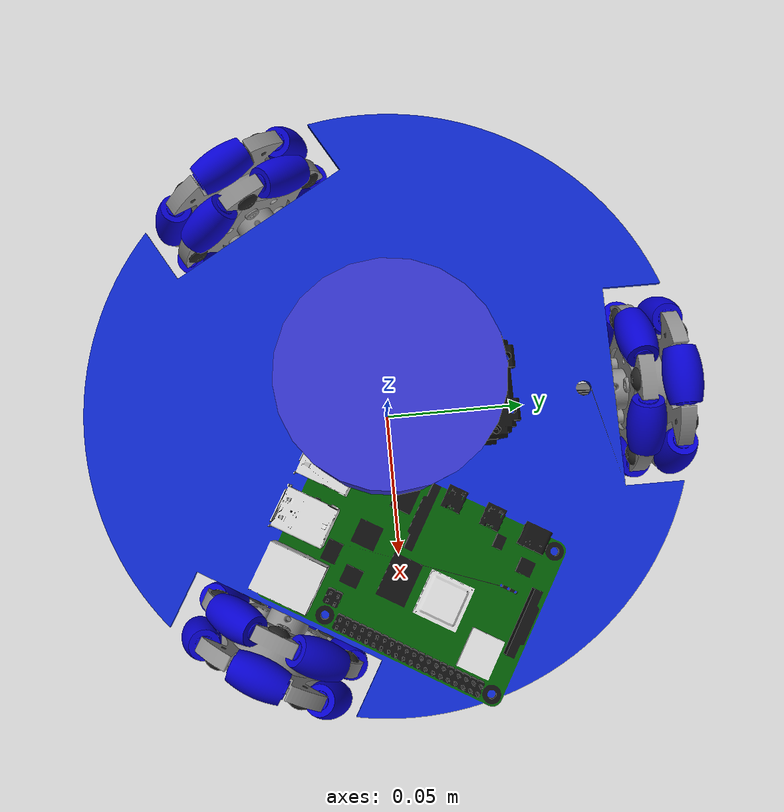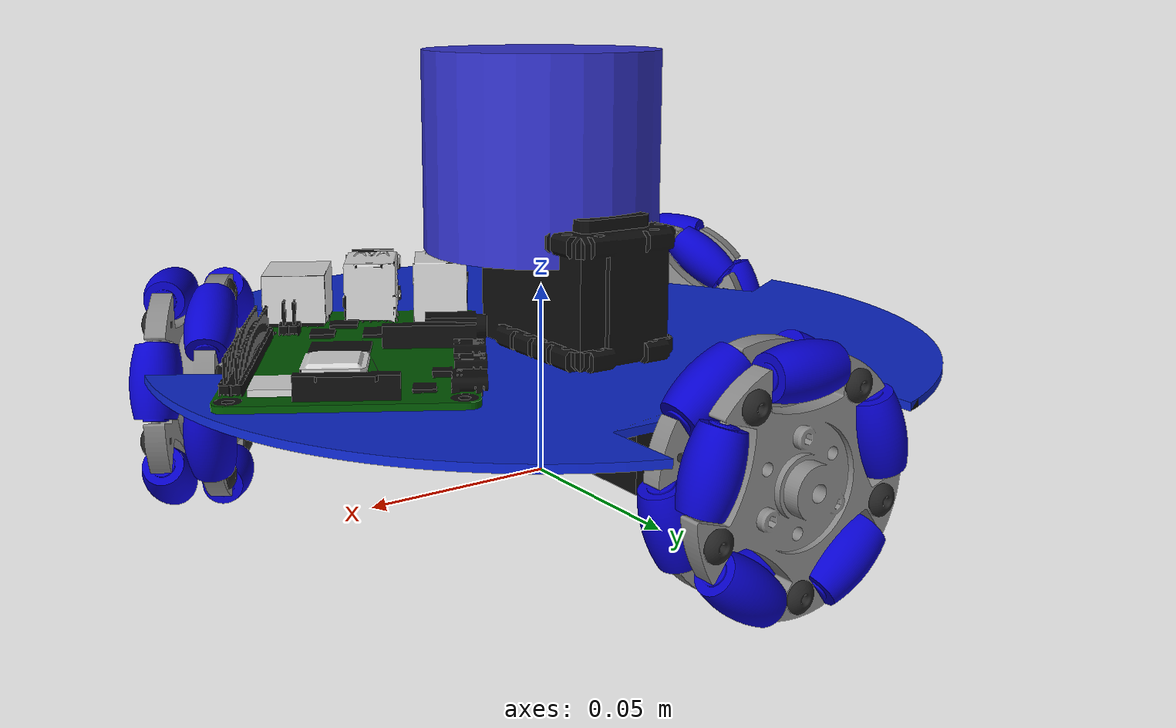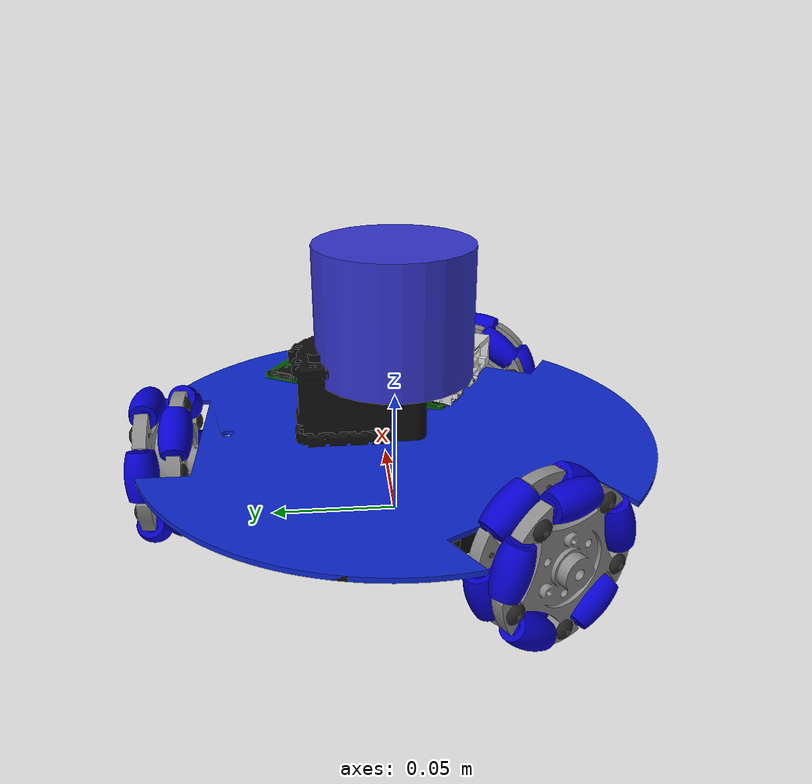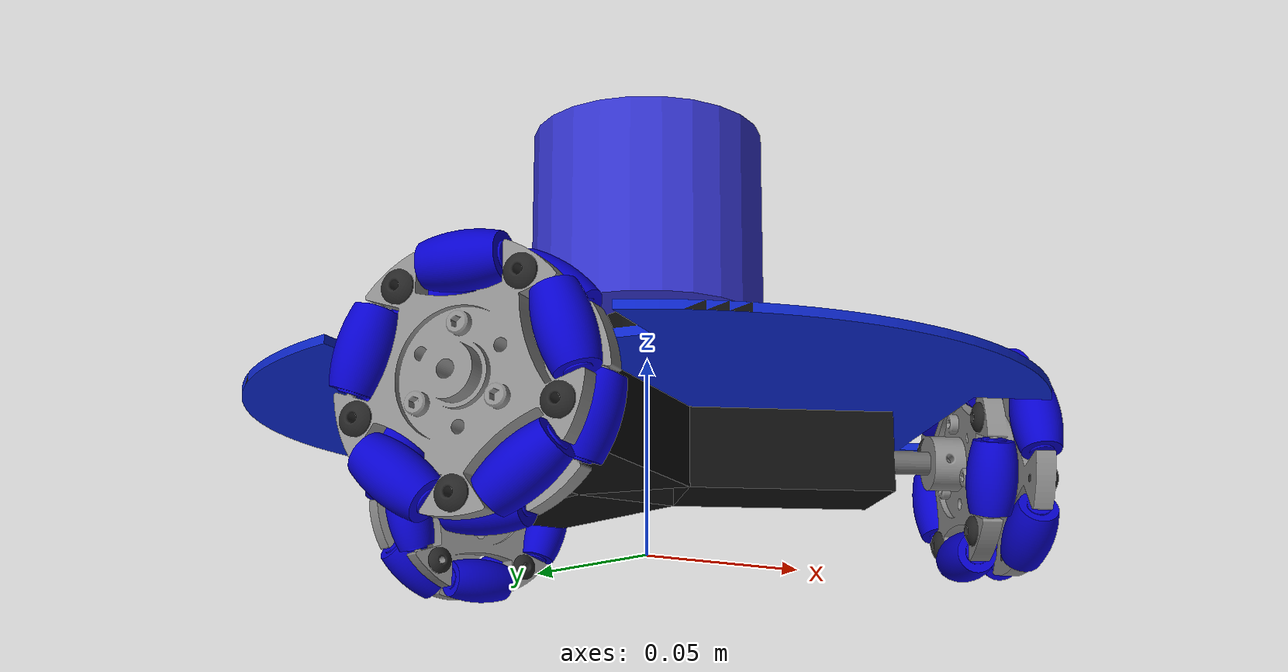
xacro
<?xml version="1.0"?>
<robot xmlns:xacro="http://www.ros.org/wiki/xacro" name="omni_with_laser_imu">
  <xacro:arg name="sensor_namespace" default="omni"/>
  <xacro:include filename="$(find simple_rbt)/model/omni/omni_robot.urdf.xacro"/>
  <xacro:include filename="$(find simple_rbt)/model/sensor/simple_laser_imu/model.xacro"/>
  <xacro:simple_laser_imu parent_link="base_link" xyz="0.0 0.0 0.05" rpy="0 0 0" sensor_namespace="$(arg sensor_namespace)" />
</robot>

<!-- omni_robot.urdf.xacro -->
<robot name="omni_robot" xmlns:xacro="http://ros.org/wiki/xacro">

  <!-- xacro property -->
  <xacro:property name="M_PI" value="3.14159274"/>

  <!-- xacro include file -->
  <xacro:include filename="$(find simple_rbt)/model/omni/urdf/base/base.urdf.xacro"/>  <!--base-->
  <xacro:include filename="$(find simple_rbt)/model/omni/urdf/omni_wheel/omni_wheel.urdf.xacro"/>   <!--omni-wheel-->
  <xacro:include filename="$(find simple_rbt)/model/omni/urdf/roller/roller.urdf.xacro"/>   <!--roller-->

  <!-- =============== Link & Joint =============== -->
  <!-- Base -->
  <link name="base_footprint"/>
  <xacro:base_v0 parent="base_footprint">
        <origin xyz="0 0 0.035" rpy="0 0 0" />
  </xacro:base_v0>

  <!-- Wheel -->
  <!-- 1st wheel -->
  <xacro:wheel_v0 prefix="first" parent="base_link">
	<origin xyz="0 0.088 -0.01" rpy="0 0 3.141593"/>
	<axis xyz="0 1 0"/>
  </xacro:wheel_v0>

  <xacro:roller_v0 prefix="r1_F" parent="first_wheel_link">
	<origin xyz="0 -0.006 0.024063" rpy="0 0 1.570796"/>
	<axis xyz="0 1 0"/>
  </xacro:roller_v0>
  <xacro:roller_v0 prefix="r2_F" parent="first_wheel_link">
	<origin xyz="-0.0228853 -0.006 0.0074359" rpy="-1.256637 0 1.570796"/>
	<axis xyz="0 1 0"/>
  </xacro:roller_v0>
  <xacro:roller_v0 prefix="r3_F" parent="first_wheel_link">
	<origin xyz="-0.0141439 -0.006 -0.0194674" rpy="-2.513274 0 1.570796"/>
	<axis xyz="0 1 0"/>
  </xacro:roller_v0>
  <xacro:roller_v0 prefix="r4_F" parent="first_wheel_link">
	<origin xyz="0.0141439 -0.006 -0.0194674" rpy="-3.769911 0 1.570796"/>
	<axis xyz="0 1 0"/>
  </xacro:roller_v0>
  <xacro:roller_v0 prefix="r5_F" parent="first_wheel_link">
	<origin xyz="0.0228853 -0.006 0.0074359" rpy="-5.026548 0 1.570796"/>
	<axis xyz="0 1 0"/>
  </xacro:roller_v0>

  <xacro:roller_v0 prefix="r6_F" parent="first_wheel_link">
	<origin xyz="0 0.006 -0.024063" rpy="0 0 1.570796"/>
	<axis xyz="0 1 0"/>
  </xacro:roller_v0>
  <xacro:roller_v0 prefix="r7_F" parent="first_wheel_link">
	<origin xyz="0.0228853 0.006 -0.0074359" rpy="-1.256637 0 1.570796"/>
	<axis xyz="0 1 0"/>
  </xacro:roller_v0>
  <xacro:roller_v0 prefix="r8_F" parent="first_wheel_link">
	<origin xyz="0.0141439 0.006 0.0194674" rpy="-2.513274 0 1.570796"/>
	<axis xyz="0 1 0"/>
  </xacro:roller_v0>
  <xacro:roller_v0 prefix="r9_F" parent="first_wheel_link">
	<origin xyz="-0.0141439 0.006 0.0194674" rpy="-3.769911 0 1.570796"/>
	<axis xyz="0 1 0"/>
  </xacro:roller_v0>
  <xacro:roller_v0 prefix="r10_F" parent="first_wheel_link">
	<origin xyz="-0.0228853 0.006 -0.0074359" rpy="-5.026548 0 1.570796"/>
	<axis xyz="0 1 0"/>
  </xacro:roller_v0>

  <!-- 2nd wheel -->
  <xacro:wheel_v0 prefix="second" parent="base_link">
	<origin xyz="-0.0762 -0.044 -0.01" rpy="0 0 5.235988" />
	<axis xyz="0 1 0"/>
  </xacro:wheel_v0>

  <xacro:roller_v0 prefix="r1_S" parent="second_wheel_link">
	<origin xyz="0 -0.006 0.024063" rpy="0 0 1.570796"/>
	<axis xyz="0 1 0"/>
  </xacro:roller_v0>
  <xacro:roller_v0 prefix="r2_S" parent="second_wheel_link">
	<origin xyz="-0.0228853 -0.006 0.0074359" rpy="-1.256637 0 1.570796"/>
	<axis xyz="0 1 0"/>
  </xacro:roller_v0>
  <xacro:roller_v0 prefix="r3_S" parent="second_wheel_link">
	<origin xyz="-0.0141439 -0.006 -0.0194674" rpy="-2.513274 0 1.570796"/>
	<axis xyz="0 1 0"/>
  </xacro:roller_v0>
  <xacro:roller_v0 prefix="r4_S" parent="second_wheel_link">
	<origin xyz="0.0141439 -0.006 -0.0194674" rpy="-3.769911 0 1.570796"/>
	<axis xyz="0 1 0"/>
  </xacro:roller_v0>
  <xacro:roller_v0 prefix="r5_S" parent="second_wheel_link">
	<origin xyz="0.0228853 -0.006 0.0074359" rpy="-5.026548 0 1.570796"/>
	<axis xyz="0 1 0"/>
  </xacro:roller_v0>

  <xacro:roller_v0 prefix="r6_S" parent="second_wheel_link">
	<origin xyz="0 0.006 -0.024063" rpy="0 0 1.570796"/>
	<axis xyz="0 1 0"/>
  </xacro:roller_v0>
  <xacro:roller_v0 prefix="r7_S" parent="second_wheel_link">
	<origin xyz="0.0228853 0.006 -0.0074359" rpy="-1.256637 0 1.570796"/>
	<axis xyz="0 1 0"/>
  </xacro:roller_v0>
  <xacro:roller_v0 prefix="r8_S" parent="second_wheel_link">
	<origin xyz="0.0141439 0.006 0.0194674" rpy="-2.513274 0 1.570796"/>
	<axis xyz="0 1 0"/>
  </xacro:roller_v0>
  <xacro:roller_v0 prefix="r9_S" parent="second_wheel_link">
	<origin xyz="-0.0141439 0.006 0.0194674" rpy="-3.769911 0 1.570796"/>
	<axis xyz="0 1 0"/>
  </xacro:roller_v0>
  <xacro:roller_v0 prefix="r10_S" parent="second_wheel_link">
	<origin xyz="-0.0228853 0.006 -0.0074359" rpy="-5.026548 0 1.570796"/>
	<axis xyz="0 1 0"/>
  </xacro:roller_v0>

<!-- 3rd wheel -->
  <xacro:wheel_v0 prefix="third" parent="base_link">
	<origin xyz="0.0762 -0.044 -0.01" rpy="0 0 1.047197" />
	<axis xyz="0 1 0"/>
  </xacro:wheel_v0>

  <xacro:roller_v0 prefix="r1_T" parent="third_wheel_link">
	<origin xyz="0 -0.006 0.024063" rpy="0 0 1.570796"/>
	<axis xyz="0 1 0"/>
  </xacro:roller_v0>
  <xacro:roller_v0 prefix="r2_T" parent="third_wheel_link">
	<origin xyz="-0.0228853 -0.006 0.0074359" rpy="-1.256637 0 1.570796"/>
	<axis xyz="0 1 0"/>
  </xacro:roller_v0>
  <xacro:roller_v0 prefix="r3_T" parent="third_wheel_link">
	<origin xyz="-0.0141439 -0.006 -0.0194674" rpy="-2.513274 0 1.570796"/>
	<axis xyz="0 1 0"/>
  </xacro:roller_v0>
  <xacro:roller_v0 prefix="r4_T" parent="third_wheel_link">
	<origin xyz="0.0141439 -0.006 -0.0194674" rpy="-3.769911 0 1.570796"/>
	<axis xyz="0 1 0"/>
  </xacro:roller_v0>
  <xacro:roller_v0 prefix="r5_T" parent="third_wheel_link">
	<origin xyz="0.0228853 -0.006 0.0074359" rpy="-5.026548 0 1.570796"/>
	<axis xyz="0 1 0"/>
  </xacro:roller_v0>

  <xacro:roller_v0 prefix="r6_T" parent="third_wheel_link">
	<origin xyz="0 0.006 -0.024063" rpy="0 0 1.570796"/>
	<axis xyz="0 1 0"/>
  </xacro:roller_v0>
  <xacro:roller_v0 prefix="r7_T" parent="third_wheel_link">
	<origin xyz="0.0228853 0.006 -0.0074359" rpy="-1.256637 0 1.570796"/>
	<axis xyz="0 1 0"/>
  </xacro:roller_v0>
  <xacro:roller_v0 prefix="r8_T" parent="third_wheel_link">
	<origin xyz="0.0141439 0.006 0.0194674" rpy="-2.513274 0 1.570796"/>
	<axis xyz="0 1 0"/>
  </xacro:roller_v0>
  <xacro:roller_v0 prefix="r9_T" parent="third_wheel_link">
	<origin xyz="-0.0141439 0.006 0.0194674" rpy="-3.769911 0 1.570796"/>
	<axis xyz="0 1 0"/>
  </xacro:roller_v0>
  <xacro:roller_v0 prefix="r10_T" parent="third_wheel_link">
	<origin xyz="-0.0228853 0.006 -0.0074359" rpy="-5.026548 0 1.570796"/>
	<axis xyz="0 1 0"/>
  </xacro:roller_v0>

  <!-- ===============  Transmission =============== -->
  <xacro:wheel_trans_v0 prefix="first"/>
  <xacro:wheel_trans_v0 prefix="second"/>
  <xacro:wheel_trans_v0 prefix="third"/>
  <!-- =============== Gazebo =============== -->
  <gazebo>
    <plugin name="gazebo_ros_control" filename="libgazebo_ros_control.so">
      <robotNamespace>$(arg robot_namespace)</robotNamespace>
    </plugin>
  </gazebo>

  <!-- Base -->
  <xacro:base_gazebo_v0/>

  <!-- Wheel -->
  <xacro:wheel_gazebo_v0 prefix="first"/>
  <xacro:wheel_gazebo_v0 prefix="second"/>
  <xacro:wheel_gazebo_v0 prefix="third"/>
</robot>

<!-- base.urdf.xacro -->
<robot xmlns:xacro="http://ros.org/wiki/xacro">

  <xacro:include filename="$(find simple_rbt)/model/omni/urdf/base/base.gazebo.xacro"/>

  <xacro:macro name="base_v0" params="parent *joint_origin">
	<joint name="base_link_joint" type="fixed">
	  <xacro:insert_block name="joint_origin"/>
	  <parent link="${parent}"/>
	  <child link="base_link"/>
	</joint>

	<link name="base_link">
	  <visual>
		<geometry>
		  <mesh filename="package://simple_rbt/model/omni/meshes/DAE/base/omni_wheel_body.dae"/>
		</geometry>
	  </visual>
	  <collision>
		<geometry>
		  <mesh filename="package://simple_rbt/model/omni/meshes/STL/base/base_link.stl"/>
		</geometry>
	  </collision>
	  <inertial>
		<origin xyz="0 0 0"/>
		<mass value="1.167"/>
		<inertia ixx="0.0016" ixy="0" ixz="0" iyy="0.0016" iyz="0" izz="0.0032" />
	  </inertial>
          <surface>
            <friction>
              <ode>
                <mu>0.8</mu>
                <mu2>0.8</mu2>
                <kp>1e15</kp>
                <kd>1e13</kd>
              </ode>
            </friction>
            <bounce>
              <restitution_coefficient>0.01</restitution_coefficient>
              <threshold>10</threshold>
            </bounce>
            <contact>
              <ode>
                <max_vel>0.01</max_vel>
                <minDepth>0</minDepth>
                <contact_surface_layer>0</contact_surface_layer>
              </ode>
            </contact>
          </surface>
	</link>
  </xacro:macro>

</robot>

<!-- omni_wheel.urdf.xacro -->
<robot xmlns:xacro="http://ros.org/wiki/xacro">

  <xacro:include filename="$(find simple_rbt)/model/omni/urdf/omni_wheel/omni_wheel.transmission.xacro"/>
  <xacro:include filename="$(find simple_rbt)/model/omni/urdf/omni_wheel/omni_wheel.gazebo.xacro"/>

  <xacro:macro name="wheel_v0" params="prefix parent *joint_origin *joint_axis">
	<joint name="${prefix}_wheel_joint" type="continuous">
	  <xacro:insert_block name="joint_origin"/>
	  <parent link="${parent}"/>
	  <child link="${prefix}_wheel_link"/>
          <limit effort="100" velocity="100"/>
	  <xacro:insert_block name="joint_axis"/>
	</joint>

	<link name="${prefix}_wheel_link">
	  <visual>
		<geometry>
		  <mesh filename="package://simple_rbt/model/omni/meshes/DAE/omni_wheel/omni_wheel.dae"/>
		</geometry>
	  </visual>
	  <collision>
		<geometry>
		  <mesh filename="package://simple_rbt/model/omni/meshes/STL/omni_wheel/omni_wheel.stl"/>
		</geometry>
	  </collision>
	  <inertial>
		<origin xyz="0.0 -0.011 -0.0"/>
		<mass value="0.25"/>
		<inertia ixx="0.00031" ixy="0" ixz="0" iyy="0.0005" iyz="0" izz="0.00031"/>
	  </inertial>
          <surface>
            <friction>
              <ode>
                <mu1>1.2</mu1>
                <mu2>1.2</mu2>
                <kp>1e15</kp>
                <kd>1e13</kd>
              </ode>
            </friction>
            <bounce>
              <restitution_coefficient>0.01</restitution_coefficient>
              <threshold>0</threshold>
            </bounce>
            <contact>
              <ode>
                <max_vel>10</max_vel>
              </ode>
            </contact>
          </surface>
	</link>
  </xacro:macro>

</robot>

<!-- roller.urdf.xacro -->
<robot xmlns:xacro="http://ros.org/wiki/xacro">

  <xacro:include filename="$(find simple_rbt)/model/omni/urdf/roller/roller.transmission.xacro"/>
  <xacro:include filename="$(find simple_rbt)/model/omni/urdf/roller/roller.gazebo.xacro"/>

  <xacro:macro name="roller_v0" params="prefix parent *joint_origin *joint_axis">
	<joint name="${prefix}_roller_joint" type="continuous">
	  <xacro:insert_block name="joint_origin"/>
	  <parent link="${parent}"/>
	  <child link="${prefix}_roller_link"/>
	  <xacro:insert_block name="joint_axis"/>
	</joint>

	<link name="${prefix}_roller_link">
	  <visual>
		<geometry>
		  <mesh filename="package://simple_rbt/model/omni/meshes/DAE/roller/omni_roller.dae"/>
		</geometry>
	  </visual>
	  <collision>
		<geometry>
		  <mesh filename="package://simple_rbt/model/omni/meshes/STL/roller/roller.stl"/>
		</geometry>
	  </collision>
	  <inertial>
		<origin xyz="0.0 0.0 0.0"/>
		<mass value="0.009"/>
		<inertia ixx="0.000001257" ixy="0" ixz="0" iyy="0.000000342" iyz="0" izz="0.000001257"/>
	  </inertial>
          <surface>
            <friction>
              <ode>
                <mu1>1.2</mu1>
                <mu2>1.2</mu2>
                <kp>1e15</kp>
                <kd>1e13</kd>
              </ode>
            </friction>
            <bounce>
              <restitution_coefficient>0.01</restitution_coefficient>
              <threshold>0</threshold>
            </bounce>
            <contact>
              <ode>
                <max_vel>10</max_vel>
              </ode>
            </contact>
          </surface>
	</link>
  </xacro:macro>

</robot>

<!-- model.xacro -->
<robot xmlns:xacro="http://www.ros.org/wiki/xacro">

    <xacro:macro name="simple_laser_imu" params="parent_link xyz rpy sensor_namespace">

        <link name="imu_link">
            <inertial>
                <mass value="0.01"/>
                <inertia ixx="1e-6" ixy="0.0" ixz="0.0" iyy="1e-6" iyz="0.0" izz="1e-6"/>
            </inertial>
        </link>

        <link name="laser_link">
            <inertial>
                <mass value="0.1"/>
                <inertia ixx="0.0001" ixy="0.0" ixz="0.0" iyy="0.0001" iyz="0.0" izz="0.0001"/>
            </inertial>

            <visual>
                <geometry>
                    <cylinder radius="0.03" length="0.05"/>
                </geometry>
                <material name="blue">
                    <color rgba="0.2 0.2 0.8 1"/>
                </material>
            </visual>

            <collision>
                <geometry>
                    <cylinder radius="0.03" length="0.05"/>
                </geometry>
            </collision>
        </link>

        <joint name="laser_joint" type="fixed">
            <parent link="${parent_link}"/>
            <child link="laser_link"/>
            <origin xyz="${xyz}" rpy="${rpy}"/>
        </joint>

        <joint name="laser_imu_joint" type="fixed">
            <parent link="laser_link"/>
            <child link="imu_link"/>
            <origin xyz="0 0 -0.06" rpy="0 0 0"/>
        </joint>

        <gazebo reference="laser_link">
            <sensor type="ray" name="laser_sensor">
                <pose>0 0 0 0 0 0</pose>
                <always_on>true</always_on>
                <update_rate>10</update_rate>
                <visualize>true</visualize>
                <ray>
                    <scan>
                        <horizontal>
                            <samples>720</samples>
                            <resolution>1</resolution>
                            <min_angle>-3.141592653589793</min_angle>
                            <max_angle>3.141592653589793</max_angle>
                        </horizontal>
                    </scan>
                    <range>
                        <min>0.12</min>
                        <max>8.0</max>
                        <resolution>0.01</resolution>
                    </range>
                    <noise>
                        <type>gaussian</type>
                        <mean>0.0</mean>
                        <stddev>0.01</stddev>
                    </noise>
                </ray>

                <plugin name="gazebo_ros_laser_controller" filename="libgazebo_ros_laser.so">
                    <robotNamespace>${sensor_namespace}</robotNamespace>
                    <topicName>laser/scan</topicName>
                    <frameName>laser_link</frameName>
                </plugin>
            </sensor>
        </gazebo>

        <gazebo reference="imu_link">
            <sensor name="imu_sensor" type="imu">
                <pose>0 0 0 0 0 0</pose>
                <always_on>true</always_on>
                <update_rate>200</update_rate>
                <visualize>true</visualize>

                <plugin filename="libgazebo_ros_imu_sensor.so" name="imu_plugin">
                    <robotNamespace>${sensor_namespace}</robotNamespace>
                    <topicName>laser/imu</topicName>
                    <bodyName>imu_link</bodyName>
                    <updateRateHZ>200.0</updateRateHZ>
                    <gaussianNoise>0.0</gaussianNoise>
                    <xyzOffset>0 0 0</xyzOffset>
                    <rpyOffset>0 0 0</rpyOffset>
                    <frameName>imu_link</frameName>
                </plugin>
            </sensor>
        </gazebo>

    </xacro:macro>

</robot>
